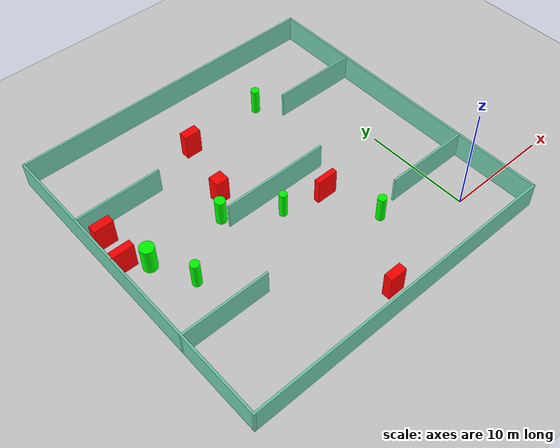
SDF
<sdf version="1.7">
 <world name="default">
  <light name="sun" type="directional">
   <pose>0 0 10 0 -0 0</pose>
   <diffuse>0.8 0.8 0.8 1</diffuse>
   <specular>0.2 0.2 0.2 1</specular>
   <attenuation>
    <range>1000</range>
    <constant>0.9</constant>
    <linear>0.01</linear>
    <quadratic>0.001</quadratic>
   </attenuation>
   <direction>-0.5 0.1 -0.9</direction>
   <spot><inner_angle>0</inner_angle><outer_angle>0</outer_angle><falloff>0</falloff></spot>
  </light>
  <model name="ground_plane">
   <static>1</static>
   <link name="link">
    <collision name="collision">
     <geometry><plane><normal>0 0 1</normal><size>100 100</size></plane></geometry>
     <surface>
      <contact><collide_bitmask>65535</collide_bitmask></contact>
      <friction><ode><mu>100</mu><mu2>50</mu2></ode></friction>
     </surface>
    </collision>
    <visual name="visual">
     <cast_shadows>0</cast_shadows>
     <geometry><plane><normal>0 0 1</normal><size>100 100</size></plane></geometry>
     <material>
      <script><uri>file://media/materials/scripts/gazebo.material</uri><name>Gazebo/Grey</name></script>
     </material>
    </visual>
   </link>
  </model>
  <gravity>0 0 -9.8</gravity>
  <magnetic_field>6e-06 2.3e-05 -4.2e-05</magnetic_field>
  <atmosphere type="adiabatic"/>
  <physics type="ode">
   <max_step_size>0.001</max_step_size>
   <real_time_factor>1</real_time_factor>
   <real_time_update_rate>1000</real_time_update_rate>
  </physics>
  <scene><ambient>0.4 0.4 0.4 1</ambient><background>0.7 0.7 0.7 1</background><shadows>1</shadows></scene>
  <spherical_coordinates>
   <surface_model>EARTH_WGS84</surface_model>
   <latitude_deg>0</latitude_deg>
   <longitude_deg>0</longitude_deg>
   <elevation>0</elevation>
   <heading_deg>0</heading_deg>
  </spherical_coordinates>
  <model name="my_base_walls">
   <link name="Wall_10">
    <collision name="Wall_10_Collision">
     <geometry><box><size>8.2 0.2 2.5</size></box></geometry>
     <pose>0 0 1.25 0 -0 0</pose>
    </collision>
    <visual name="Wall_10_Visual">
     <pose>0 0 1.25 0 -0 0</pose>
     <geometry><box><size>8.2 0.2 2.5</size></box></geometry>
     <material>
      <script><uri>file://media/materials/scripts/gazebo.material</uri><name>Gazebo/Grey</name></script>
      <ambient>0.435294 0.796078 0.67451 1</ambient>
     </material>
     <meta><layer>0</layer></meta>
    </visual>
    <pose>-11 -7 0 0 -0 0</pose>
   </link>
   <link name="Wall_12">
    <collision name="Wall_12_Collision">
     <geometry><box><size>8.2 0.2 2.5</size></box></geometry>
     <pose>0 0 1.25 0 -0 0</pose>
    </collision>
    <visual name="Wall_12_Visual">
     <pose>0 0 1.25 0 -0 0</pose>
     <geometry><box><size>8.2 0.2 2.5</size></box></geometry>
     <material>
      <script><uri>file://media/materials/scripts/gazebo.material</uri><name>Gazebo/Grey</name></script>
      <ambient>0.435294 0.796078 0.67451 1</ambient>
     </material>
     <meta><layer>0</layer></meta>
    </visual>
    <pose>-11 7 0 0 -0 0</pose>
   </link>
   <link name="Wall_14">
    <collision name="Wall_14_Collision">
     <geometry><box><size>8.2 0.2 2.5</size></box></geometry>
     <pose>0 0 1.25 0 -0 0</pose>
    </collision>
    <visual name="Wall_14_Visual">
     <pose>0 0 1.25 0 -0 0</pose>
     <geometry><box><size>8.2 0.2 2.5</size></box></geometry>
     <material>
      <script><uri>file://media/materials/scripts/gazebo.material</uri><name>Gazebo/Grey</name></script>
      <ambient>0.435294 0.796078 0.67451 1</ambient>
     </material>
     <meta><layer>0</layer></meta>
    </visual>
    <pose>11 7 0 0 -0 3.14159</pose>
   </link>
   <link name="Wall_16">
    <collision name="Wall_16_Collision">
     <geometry><box><size>10.2 0.2 2.5</size></box></geometry>
     <pose>0 0 1.25 0 -0 0</pose>
    </collision>
    <visual name="Wall_16_Visual">
     <pose>0 0 1.25 0 -0 0</pose>
     <geometry><box><size>10.2 0.2 2.5</size></box></geometry>
     <material>
      <script><uri>file://media/materials/scripts/gazebo.material</uri><name>Gazebo/Grey</name></script>
      <ambient>0.435294 0.796078 0.67451 1</ambient>
     </material>
     <meta><layer>0</layer></meta>
    </visual>
    <pose>0 0 0 0 -0 3.14159</pose>
   </link>
   <link name="Wall_2">
    <collision name="Wall_2_Collision">
     <geometry><box><size>30.2 0.2 2.5</size></box></geometry>
     <pose>0 0 1.25 0 -0 0</pose>
    </collision>
    <visual name="Wall_2_Visual">
     <pose>0 0 1.25 0 -0 0</pose>
     <geometry><box><size>30.2 0.2 2.5</size></box></geometry>
     <material>
      <script><uri>file://media/materials/scripts/gazebo.material</uri><name>Gazebo/Grey</name></script>
      <ambient>0.435294 0.796078 0.67451 1</ambient>
     </material>
     <meta><layer>0</layer></meta>
    </visual>
    <pose>0 -15 0 0 -0 3.14159</pose>
   </link>
   <link name="Wall_3">
    <collision name="Wall_3_Collision">
     <geometry><box><size>30.2 0.2 2.5</size></box></geometry>
     <pose>0 0 1.25 0 -0 0</pose>
    </collision>
    <visual name="Wall_3_Visual">
     <pose>0 0 1.25 0 -0 0</pose>
     <geometry><box><size>30.2 0.2 2.5</size></box></geometry>
     <material>
      <script><uri>file://media/materials/scripts/gazebo.material</uri><name>Gazebo/Grey</name></script>
      <ambient>0.435294 0.796078 0.67451 1</ambient>
     </material>
     <meta><layer>0</layer></meta>
    </visual>
    <pose>-15 0 0 0 -0 1.5708</pose>
   </link>
   <link name="Wall_4">
    <collision name="Wall_4_Collision">
     <geometry><box><size>30.2 0.2 2.5</size></box></geometry>
     <pose>0 0 1.25 0 -0 0</pose>
    </collision>
    <visual name="Wall_4_Visual">
     <pose>0 0 1.25 0 -0 0</pose>
     <geometry><box><size>30.2 0.2 2.5</size></box></geometry>
     <material>
      <script><uri>file://media/materials/scripts/gazebo.material</uri><name>Gazebo/Grey</name></script>
      <ambient>0.435294 0.796078 0.67451 1</ambient>
     </material>
     <meta><layer>0</layer></meta>
    </visual>
    <pose>0 15 0 0 -0 0</pose>
   </link>
   <link name="Wall_6">
    <collision name="Wall_6_Collision">
     <geometry><box><size>30.2 0.2 2.5</size></box></geometry>
     <pose>0 0 1.25 0 -0 0</pose>
    </collision>
    <visual name="Wall_6_Visual">
     <pose>0 0 1.25 0 -0 0</pose>
     <geometry><box><size>30.2 0.2 2.5</size></box></geometry>
     <material>
      <script><uri>file://media/materials/scripts/gazebo.material</uri><name>Gazebo/Grey</name></script>
      <ambient>0.435294 0.796078 0.67451 1</ambient>
     </material>
     <meta><layer>0</layer></meta>
    </visual>
    <pose>15 0 0 0 -0 1.5708</pose>
   </link>
   <link name="Wall_8">
    <collision name="Wall_8_Collision">
     <geometry><box><size>8.2 0.2 2.5</size></box></geometry>
     <pose>0 0 1.25 0 -0 0</pose>
    </collision>
    <visual name="Wall_8_Visual">
     <pose>0 0 1.25 0 -0 0</pose>
     <geometry><box><size>8.2 0.2 2.5</size></box></geometry>
     <material>
      <script><uri>file://media/materials/scripts/gazebo.material</uri><name>Gazebo/Grey</name></script>
      <ambient>0.435294 0.796078 0.67451 1</ambient>
     </material>
     <meta><layer>0</layer></meta>
    </visual>
    <pose>11 -7 0 0 -0 3.14159</pose>
   </link>
   <static>1</static>
   <pose>-11 11 0 0 -0 0</pose>
  </model>
  <model name="cylinder1">
   <static>1</static>
   <link name="link">
    <inertial>
     <mass>1</mass>
     <inertia><ixx>0.5</ixx><ixy>0</ixy><ixz>0</ixz><iyy>0.5</iyy><iyz>0</iyz><izz>1</izz></inertia>
    </inertial>
    <collision name="collision">
     <geometry><cylinder><radius>0.4201542644754477</radius><length>2.5</length></cylinder></geometry>
    </collision>
    <visual name="visual">
     <geometry><cylinder><radius>0.4201542644754477</radius><length>2.5</length></cylinder></geometry>
     <material>
      <ambient>0 1 0 1</ambient>
      <diffuse>0 1 0 1</diffuse>
      <specular>0.1 0.1 0.1 1</specular>
      <emissive>0 0 0 0</emissive>
     </material>
    </visual>
   </link>
   <pose>-21.529675369971795 8.284707742819654 1.25 0 0 0</pose>
  </model>
  <model name="cylinder2">
   <static>1</static>
   <link name="link">
    <inertial>
     <mass>1</mass>
     <inertia><ixx>0.5</ixx><ixy>0</ixy><ixz>0</ixz><iyy>0.5</iyy><iyz>0</iyz><izz>1</izz></inertia>
    </inertial>
    <collision name="collision">
     <geometry><cylinder><radius>0.36900081175490235</radius><length>2.5</length></cylinder></geometry>
    </collision>
    <visual name="visual">
     <geometry><cylinder><radius>0.36900081175490235</radius><length>2.5</length></cylinder></geometry>
     <material>
      <ambient>0 1 0 1</ambient>
      <diffuse>0 1 0 1</diffuse>
      <specular>0.1 0.1 0.1 1</specular>
      <emissive>0 0 0 0</emissive>
     </material>
    </visual>
   </link>
   <pose>-11.91977165516383 9.054962322170027 1.25 0 0 0</pose>
  </model>
  <model name="cylinder3">
   <static>1</static>
   <link name="link">
    <inertial>
     <mass>1</mass>
     <inertia><ixx>0.5</ixx><ixy>0</ixy><ixz>0</ixz><iyy>0.5</iyy><iyz>0</iyz><izz>1</izz></inertia>
    </inertial>
    <collision name="collision">
     <geometry><cylinder><radius>0.48128727492939216</radius><length>2.5</length></cylinder></geometry>
    </collision>
    <visual name="visual">
     <geometry><cylinder><radius>0.48128727492939216</radius><length>2.5</length></cylinder></geometry>
     <material>
      <ambient>0 1 0 1</ambient>
      <diffuse>0 1 0 1</diffuse>
      <specular>0.1 0.1 0.1 1</specular>
      <emissive>0 0 0 0</emissive>
     </material>
    </visual>
   </link>
   <pose>-16.197287675271458 11.938431109274797 1.25 0 0 0</pose>
  </model>
  <model name="cylinder4">
   <static>1</static>
   <link name="link">
    <inertial>
     <mass>1</mass>
     <inertia><ixx>0.5</ixx><ixy>0</ixy><ixz>0</ixz><iyy>0.5</iyy><iyz>0</iyz><izz>1</izz></inertia>
    </inertial>
    <collision name="collision">
     <geometry><cylinder><radius>0.3899868912386731</radius><length>2.5</length></cylinder></geometry>
    </collision>
    <visual name="visual">
     <geometry><cylinder><radius>0.3899868912386731</radius><length>2.5</length></cylinder></geometry>
     <material>
      <ambient>0 1 0 1</ambient>
      <diffuse>0 1 0 1</diffuse>
      <specular>0.1 0.1 0.1 1</specular>
      <emissive>0 0 0 0</emissive>
     </material>
    </visual>
   </link>
   <pose>-5.548342520070369 20.18017347555378 1.25 0 0 0</pose>
  </model>
  <model name="cylinder5">
   <static>1</static>
   <link name="link">
    <inertial>
     <mass>1</mass>
     <inertia><ixx>0.5</ixx><ixy>0</ixy><ixz>0</ixz><iyy>0.5</iyy><iyz>0</iyz><izz>1</izz></inertia>
    </inertial>
    <collision name="collision">
     <geometry><cylinder><radius>0.40043425024168955</radius><length>2.5</length></cylinder></geometry>
    </collision>
    <visual name="visual">
     <geometry><cylinder><radius>0.40043425024168955</radius><length>2.5</length></cylinder></geometry>
     <material>
      <ambient>0 1 0 1</ambient>
      <diffuse>0 1 0 1</diffuse>
      <specular>0.1 0.1 0.1 1</specular>
      <emissive>0 0 0 0</emissive>
     </material>
    </visual>
   </link>
   <pose>-6.211492384222746 3.3576428484011362 1.25 0 0 0</pose>
  </model>
  <model name="cylinder6">
   <static>1</static>
   <link name="link">
    <inertial>
     <mass>1</mass>
     <inertia><ixx>0.5</ixx><ixy>0</ixy><ixz>0</ixz><iyy>0.5</iyy><iyz>0</iyz><izz>1</izz></inertia>
    </inertial>
    <collision name="collision">
     <geometry><cylinder><radius>0.6413670194429641</radius><length>2.5</length></cylinder></geometry>
    </collision>
    <visual name="visual">
     <geometry><cylinder><radius>0.6413670194429641</radius><length>2.5</length></cylinder></geometry>
     <material>
      <ambient>0 1 0 1</ambient>
      <diffuse>0 1 0 1</diffuse>
      <specular>0.1 0.1 0.1 1</specular>
      <emissive>0 0 0 0</emissive>
     </material>
    </visual>
   </link>
   <pose>-23.331611928628426 11.984973842403104 1.25 0 0 0</pose>
  </model>
  <model name="box1">
   <static>1</static>
   <link name="link">
    <inertial>
     <mass>1</mass>
     <inertia><ixx>0.083</ixx><ixy>0</ixy><ixz>0</ixz><iyy>0.083</iyy><iyz>0</iyz><izz>0.083</izz></inertia>
    </inertial>
    <collision name="collision">
     <geometry><box><size>1.208061161245264 1.1375700654883434 2.5</size></box></geometry>
    </collision>
    <visual name="visual">
     <geometry><box><size>1.208061161245264 1.1375700654883434 2.5</size></box></geometry>
     <material>
      <ambient>1 0 0 1</ambient>
      <diffuse>1 0 0 1</diffuse>
      <specular>0.1 0.1 0.1 1</specular>
      <emissive>0 0 0 0</emissive>
     </material>
    </visual>
    <sensor name="my_contact" type="contact">
     <contact><collision>box_collision</collision><topic>__default_topic__</topic></contact>
    </sensor>
   </link>
   <pose>-14.747308081069383 13.91915702576107 1.25 0 0 0</pose>
  </model>
  <model name="box2">
   <static>1</static>
   <link name="link">
    <inertial>
     <mass>1</mass>
     <inertia><ixx>0.083</ixx><ixy>0</ixy><ixz>0</ixz><iyy>0.083</iyy><iyz>0</iyz><izz>0.083</izz></inertia>
    </inertial>
    <collision name="collision">
     <geometry><box><size>1.8050558199356082 0.8169566402576057 2.5</size></box></geometry>
    </collision>
    <visual name="visual">
     <geometry><box><size>1.8050558199356082 0.8169566402576057 2.5</size></box></geometry>
     <material>
      <ambient>1 0 0 1</ambient>
      <diffuse>1 0 0 1</diffuse>
      <specular>0.1 0.1 0.1 1</specular>
      <emissive>0 0 0 0</emissive>
     </material>
    </visual>
    <sensor name="my_contact" type="contact">
     <contact><collision>box_collision</collision><topic>__default_topic__</topic></contact>
    </sensor>
   </link>
   <pose>-24.664578878347474 16.298961975945307 1.25 0 0 0</pose>
  </model>
  <model name="box3">
   <static>1</static>
   <link name="link">
    <inertial>
     <mass>1</mass>
     <inertia><ixx>0.083</ixx><ixy>0</ixy><ixz>0</ixz><iyy>0.083</iyy><iyz>0</iyz><izz>0.083</izz></inertia>
    </inertial>
    <collision name="collision">
     <geometry><box><size>2.0336504368689337 0.5286433920352902 2.5</size></box></geometry>
    </collision>
    <visual name="visual">
     <geometry><box><size>2.0336504368689337 0.5286433920352902 2.5</size></box></geometry>
     <material>
      <ambient>1 0 0 1</ambient>
      <diffuse>1 0 0 1</diffuse>
      <specular>0.1 0.1 0.1 1</specular>
      <emissive>0 0 0 0</emissive>
     </material>
    </visual>
    <sensor name="my_contact" type="contact">
     <contact><collision>box_collision</collision><topic>__default_topic__</topic></contact>
    </sensor>
   </link>
   <pose>-7.968599645870139 8.173970502381682 1.25 0 0 0</pose>
  </model>
  <model name="box4">
   <static>1</static>
   <link name="link">
    <inertial>
     <mass>1</mass>
     <inertia><ixx>0.083</ixx><ixy>0</ixy><ixz>0</ixz><iyy>0.083</iyy><iyz>0</iyz><izz>0.083</izz></inertia>
    </inertial>
    <collision name="collision">
     <geometry><box><size>1.625728634317455 0.7705199646437233 2.5</size></box></geometry>
    </collision>
    <visual name="visual">
     <geometry><box><size>1.625728634317455 0.7705199646437233 2.5</size></box></geometry>
     <material>
      <ambient>1 0 0 1</ambient>
      <diffuse>1 0 0 1</diffuse>
      <specular>0.1 0.1 0.1 1</specular>
      <emissive>0 0 0 0</emissive>
     </material>
    </visual>
    <sensor name="my_contact" type="contact">
     <contact><collision>box_collision</collision><topic>__default_topic__</topic></contact>
    </sensor>
   </link>
   <pose>-10.752775648099295 -2.395882698910656 1.25 0 0 0</pose>
  </model>
  <model name="box5">
   <static>1</static>
   <link name="link">
    <inertial>
     <mass>1</mass>
     <inertia><ixx>0.083</ixx><ixy>0</ixy><ixz>0</ixz><iyy>0.083</iyy><iyz>0</iyz><izz>0.083</izz></inertia>
    </inertial>
    <collision name="collision">
     <geometry><box><size>2.0788143412715003 0.6860737677288691 2.5</size></box></geometry>
    </collision>
    <visual name="visual">
     <geometry><box><size>2.0788143412715003 0.6860737677288691 2.5</size></box></geometry>
     <material>
      <ambient>1 0 0 1</ambient>
      <diffuse>1 0 0 1</diffuse>
      <specular>0.1 0.1 0.1 1</specular>
      <emissive>0 0 0 0</emissive>
     </material>
    </visual>
    <sensor name="my_contact" type="contact">
     <contact><collision>box_collision</collision><topic>__default_topic__</topic></contact>
    </sensor>
   </link>
   <pose>-24.954020472244853 13.166328022636272 1.25 0 0 0</pose>
  </model>
  <model name="box6">
   <static>1</static>
   <link name="link">
    <inertial>
     <mass>1</mass>
     <inertia><ixx>0.083</ixx><ixy>0</ixy><ixz>0</ixz><iyy>0.083</iyy><iyz>0</iyz><izz>0.083</izz></inertia>
    </inertial>
    <collision name="collision">
     <geometry><box><size>1.556058013134535 0.8590506867854137 2.5</size></box></geometry>
    </collision>
    <visual name="visual">
     <geometry><box><size>1.556058013134535 0.8590506867854137 2.5</size></box></geometry>
     <material>
      <ambient>1 0 0 1</ambient>
      <diffuse>1 0 0 1</diffuse>
      <specular>0.1 0.1 0.1 1</specular>
      <emissive>0 0 0 0</emissive>
     </material>
    </visual>
    <sensor name="my_contact" type="contact">
     <contact><collision>box_collision</collision><topic>__default_topic__</topic></contact>
    </sensor>
   </link>
   <pose>-13.242535578112458 19.83390285681659 1.25 0 0 0</pose>
  </model>
 </world>
</sdf>
